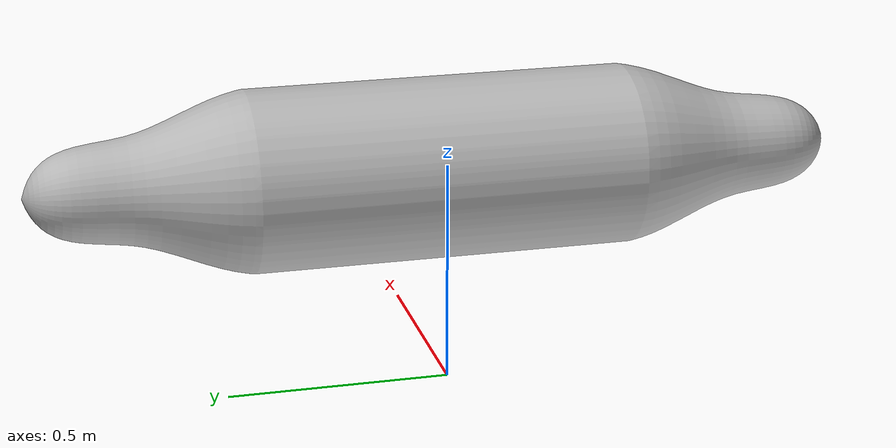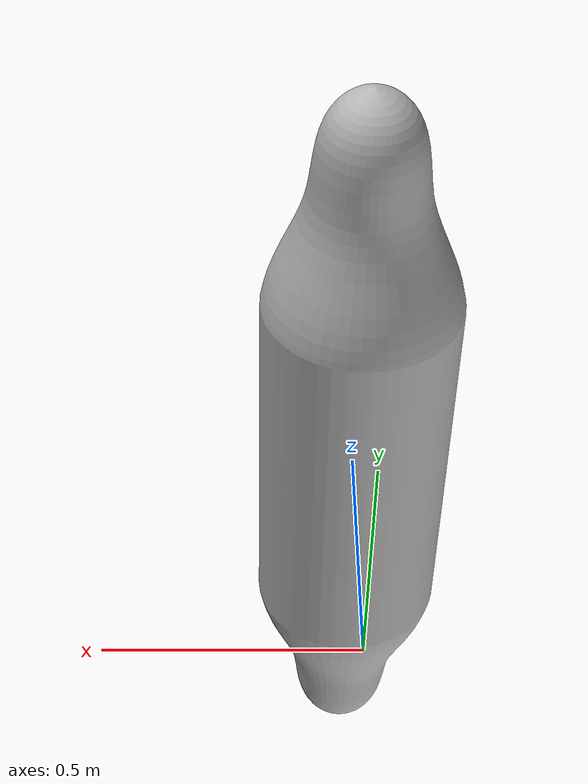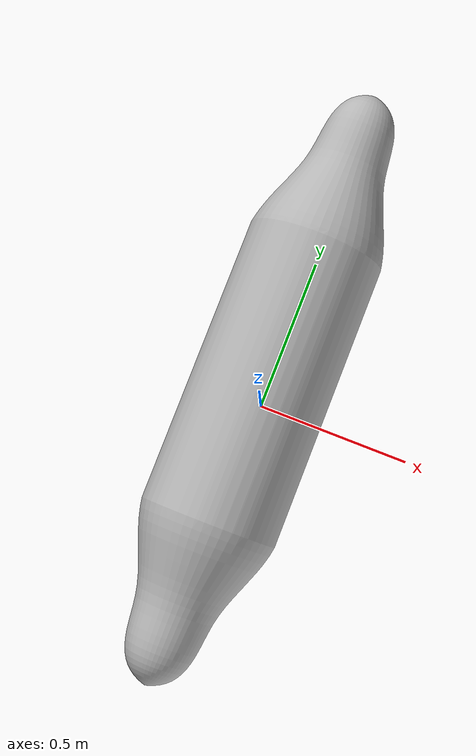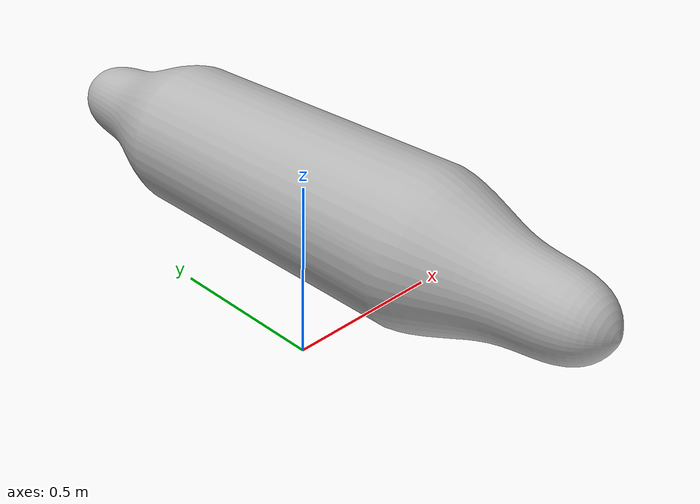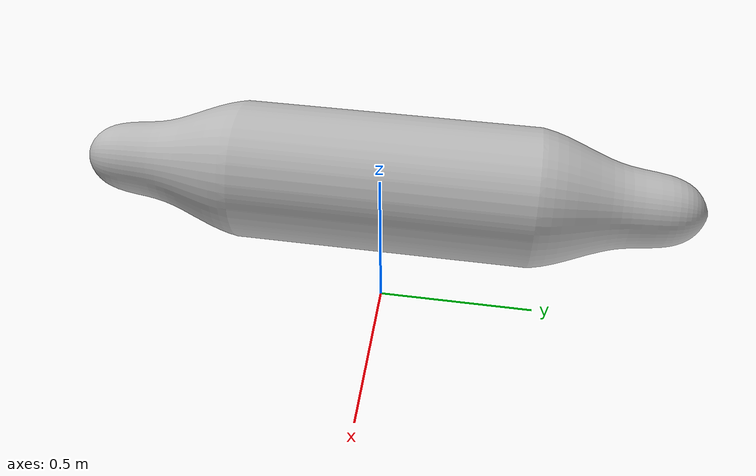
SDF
<?xml version="1.0" ?>
<sdf version="1.6">
  <model name="my_model">
    <pose>0 0 0.5 0 0 0</pose>
    <static>true</static>
    <link name="link">
      <collision name="collision">
        <geometry>
          <mesh>
            <uri>model://my_model2/meshes/my_model.stl</uri>
            <scale>0.02 0.02 0.02</scale>
          </mesh>
        </geometry>
      </collision>
      <visual name="visual">
        <geometry>
          <mesh>
            <uri>model://my_model2/meshes/my_model.stl</uri>
            <scale>0.02 0.02 0.02</scale>
          </mesh>
        </geometry>
      </visual>
    </link>
  </model>
</sdf>
